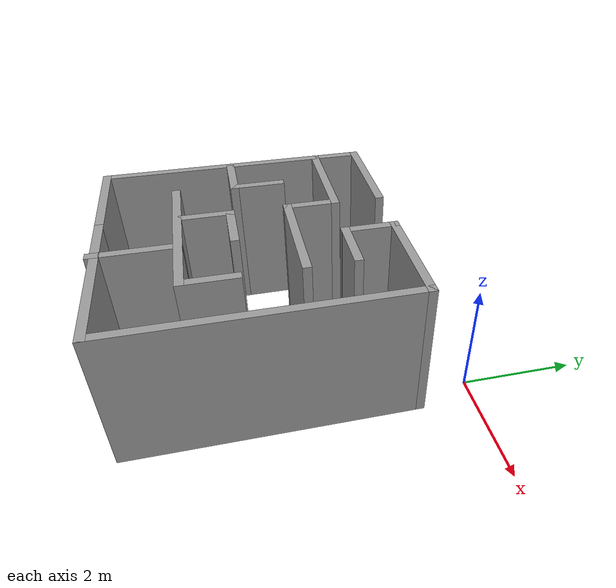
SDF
<?xml version='1.0'?>
<sdf version='1.7'>
  <model name='maze0'>
    <pose>-2.03 -2.97967 0 0 -0 0</pose>
    <link name='Wall_0'>
      <collision name='Wall_0_Collision'>
        <geometry>
          <box>
            <size>2 0.15 2.5</size>
          </box>
        </geometry>
        <pose>0 0 1.25 0 -0 0</pose>
      </collision>
      <visual name='Wall_0_Visual'>
        <pose>0 0 1.25 0 -0 0</pose>
        <geometry>
          <box>
            <size>2 0.15 2.5</size>
          </box>
        </geometry>
        <material>
          <script>
            <uri>file://media/materials/scripts/gazebo.material</uri>
            <name>Gazebo/Grey</name>
          </script>
          <ambient>1 1 1 1</ambient>
        </material>
        <meta>
          <layer>0</layer>
        </meta>
      </visual>
      <pose>-1.425 2.01967 0 0 -0 3.14159</pose>
    </link>
    <link name='Wall_1'>
      <collision name='Wall_1_Collision'>
        <geometry>
          <box>
            <size>5 0.15 2.5</size>
          </box>
        </geometry>
        <pose>0 0 1.25 0 -0 0</pose>
      </collision>
      <visual name='Wall_1_Visual'>
        <pose>0 0 1.25 0 -0 0</pose>
        <geometry>
          <box>
            <size>5 0.15 2.5</size>
          </box>
        </geometry>
        <material>
          <script>
            <uri>file://media/materials/scripts/gazebo.material</uri>
            <name>Gazebo/Grey</name>
          </script>
          <ambient>1 1 1 1</ambient>
        </material>
        <meta>
          <layer>0</layer>
        </meta>
      </visual>
      <pose>-2.35 -0.405328 0 0 -0 -1.5708</pose>
    </link>
    <link name='Wall_11'>
      <collision name='Wall_11_Collision'>
        <geometry>
          <box>
            <size>2 0.15 2.5</size>
          </box>
        </geometry>
        <pose>0 0 1.25 0 -0 0</pose>
      </collision>
      <visual name='Wall_11_Visual'>
        <pose>0 0 1.25 0 -0 0</pose>
        <geometry>
          <box>
            <size>2 0.15 2.5</size>
          </box>
        </geometry>
        <material>
          <script>
            <uri>file://media/materials/scripts/gazebo.material</uri>
            <name>Gazebo/Grey</name>
          </script>
          <ambient>1 1 1 1</ambient>
        </material>
        <meta>
          <layer>0</layer>
        </meta>
      </visual>
      <pose>0.436557 0.352125 0 0 -0 3.14159</pose>
    </link>
    <link name='Wall_12'>
      <collision name='Wall_12_Collision'>
        <geometry>
          <box>
            <size>1 0.15 2.5</size>
          </box>
        </geometry>
        <pose>0 0 1.25 0 -0 0</pose>
      </collision>
      <visual name='Wall_12_Visual'>
        <pose>0 0 1.25 0 -0 0</pose>
        <geometry>
          <box>
            <size>1 0.15 2.5</size>
          </box>
        </geometry>
        <material>
          <script>
            <uri>file://media/materials/scripts/gazebo.material</uri>
            <name>Gazebo/Grey</name>
          </script>
          <ambient>1 1 1 1</ambient>
        </material>
        <meta>
          <layer>0</layer>
        </meta>
      </visual>
      <pose>-0.488443 0.777125 0 0 -0 1.5708</pose>
    </link>
    <link name='Wall_13'>
      <collision name='Wall_13_Collision'>
        <geometry>
          <box>
            <size>2 0.15 2.5</size>
          </box>
        </geometry>
        <pose>0 0 1.25 0 -0 0</pose>
      </collision>
      <visual name='Wall_13_Visual'>
        <pose>0 0 1.25 0 -0 0</pose>
        <geometry>
          <box>
            <size>2 0.15 2.5</size>
          </box>
        </geometry>
        <material>
          <script>
            <uri>file://media/materials/scripts/gazebo.material</uri>
            <name>Gazebo/Grey</name>
          </script>
          <ambient>1 1 1 1</ambient>
        </material>
        <meta>
          <layer>0</layer>
        </meta>
      </visual>
      <pose>-1.41344 1.20213 0 0 -0 3.14159</pose>
    </link>
    <link name='Wall_15'>
      <collision name='Wall_15_Collision'>
        <geometry>
          <box>
            <size>1 0.15 2.5</size>
          </box>
        </geometry>
        <pose>0 0 1.25 0 -0 0</pose>
      </collision>
      <visual name='Wall_15_Visual'>
        <pose>0 0 1.25 0 -0 0</pose>
        <geometry>
          <box>
            <size>1 0.15 2.5</size>
          </box>
        </geometry>
        <material>
          <script>
            <uri>file://media/materials/scripts/gazebo.material</uri>
            <name>Gazebo/Grey</name>
          </script>
          <ambient>1 1 1 1</ambient>
        </material>
        <meta>
          <layer>0</layer>
        </meta>
      </visual>
      <pose>-1.43946 -0.072875 0 0 -0 -1.5708</pose>
    </link>
    <link name='Wall_16'>
      <collision name='Wall_16_Collision'>
        <geometry>
          <box>
            <size>1 0.15 2.5</size>
          </box>
        </geometry>
        <pose>0 0 1.25 0 -0 0</pose>
      </collision>
      <visual name='Wall_16_Visual'>
        <pose>0 0 1.25 0 -0 0</pose>
        <geometry>
          <box>
            <size>1 0.15 2.5</size>
          </box>
        </geometry>
        <material>
          <script>
            <uri>file://media/materials/scripts/gazebo.material</uri>
            <name>Gazebo/Grey</name>
          </script>
          <ambient>1 1 1 1</ambient>
        </material>
        <meta>
          <layer>0</layer>
        </meta>
      </visual>
      <pose>-1.86446 -0.497875 0 0 -0 3.14159</pose>
    </link>
    <link name='Wall_18'>
      <collision name='Wall_18_Collision'>
        <geometry>
          <box>
            <size>3 0.15 2.5</size>
          </box>
        </geometry>
        <pose>0 0 1.25 0 -0 0</pose>
      </collision>
      <visual name='Wall_18_Visual'>
        <pose>0 0 1.25 0 -0 0</pose>
        <geometry>
          <box>
            <size>3 0.15 2.5</size>
          </box>
        </geometry>
        <material>
          <script>
            <uri>file://media/materials/scripts/gazebo.material</uri>
            <name>Gazebo/Grey</name>
          </script>
          <ambient>1 1 1 1</ambient>
        </material>
        <meta>
          <layer>0</layer>
        </meta>
      </visual>
      <pose>-0.027612 -1.55467 0 0 -0 0</pose>
    </link>
    <link name='Wall_19'>
      <collision name='Wall_19_Collision'>
        <geometry>
          <box>
            <size>1 0.15 2.5</size>
          </box>
        </geometry>
        <pose>0 0 1.25 0 -0 0</pose>
      </collision>
      <visual name='Wall_19_Visual'>
        <pose>0 0 1.25 0 -0 0</pose>
        <geometry>
          <box>
            <size>1 0.15 2.5</size>
          </box>
        </geometry>
        <material>
          <script>
            <uri>file://media/materials/scripts/gazebo.material</uri>
            <name>Gazebo/Grey</name>
          </script>
          <ambient>1 1 1 1</ambient>
        </material>
        <meta>
          <layer>0</layer>
        </meta>
      </visual>
      <pose>1.39739 -1.12967 0 0 -0 1.5708</pose>
    </link>
    <link name='Wall_2'>
      <collision name='Wall_2_Collision'>
        <geometry>
          <box>
            <size>2 0.15 2.5</size>
          </box>
        </geometry>
        <pose>0 0 1.25 0 -0 0</pose>
      </collision>
      <visual name='Wall_2_Visual'>
        <pose>0 0 1.25 0 -0 0</pose>
        <geometry>
          <box>
            <size>2 0.15 2.5</size>
          </box>
        </geometry>
        <material>
          <script>
            <uri>file://media/materials/scripts/gazebo.material</uri>
            <name>Gazebo/Grey</name>
          </script>
          <ambient>1 1 1 1</ambient>
        </material>
        <meta>
          <layer>0</layer>
        </meta>
      </visual>
      <pose>-1.425 -2.83033 0 0 -0 0</pose>
    </link>
    <link name='Wall_21'>
      <collision name='Wall_21_Collision'>
        <geometry>
          <box>
            <size>1 0.15 2.5</size>
          </box>
        </geometry>
        <pose>0 0 1.25 0 -0 0</pose>
      </collision>
      <visual name='Wall_21_Visual'>
        <pose>0 0 1.25 0 -0 0</pose>
        <geometry>
          <box>
            <size>1 0.15 2.5</size>
          </box>
        </geometry>
        <material>
          <script>
            <uri>file://media/materials/scripts/gazebo.material</uri>
            <name>Gazebo/Grey</name>
          </script>
          <ambient>1 1 1 1</ambient>
        </material>
        <meta>
          <layer>0</layer>
        </meta>
      </visual>
      <pose>-0.492639 -1.07707 0 0 -0 1.5708</pose>
    </link>
    <link name='Wall_22'>
      <collision name='Wall_22_Collision'>
        <geometry>
          <box>
            <size>1 0.15 2.5</size>
          </box>
        </geometry>
        <pose>0 0 1.25 0 -0 0</pose>
      </collision>
      <visual name='Wall_22_Visual'>
        <pose>0 0 1.25 0 -0 0</pose>
        <geometry>
          <box>
            <size>1 0.15 2.5</size>
          </box>
        </geometry>
        <material>
          <script>
            <uri>file://media/materials/scripts/gazebo.material</uri>
            <name>Gazebo/Grey</name>
          </script>
          <ambient>1 1 1 1</ambient>
        </material>
        <meta>
          <layer>0</layer>
        </meta>
      </visual>
      <pose>-0.067639 -0.652071 0 0 -0 0</pose>
    </link>
    <link name='Wall_24'>
      <collision name='Wall_24_Collision'>
        <geometry>
          <box>
            <size>1.5 0.15 2.5</size>
          </box>
        </geometry>
        <pose>0 0 1.25 0 -0 0</pose>
      </collision>
      <visual name='Wall_24_Visual'>
        <pose>0 0 1.25 0 -0 0</pose>
        <geometry>
          <box>
            <size>1.5 0.15 2.5</size>
          </box>
        </geometry>
        <material>
          <script>
            <uri>file://media/materials/scripts/gazebo.material</uri>
            <name>Gazebo/Grey</name>
          </script>
          <ambient>1 1 1 1</ambient>
        </material>
        <meta>
          <layer>0</layer>
        </meta>
      </visual>
      <pose>0.375283 -2.22967 0 0 -0 -1.5708</pose>
    </link>
    <link name='Wall_5'>
      <collision name='Wall_5_Collision'>
        <geometry>
          <box>
            <size>3 0.15 2.5</size>
          </box>
        </geometry>
        <pose>0 0 1.25 0 -0 0</pose>
      </collision>
      <visual name='Wall_5_Visual'>
        <pose>0 0 1.25 0 -0 0</pose>
        <geometry>
          <box>
            <size>3 0.15 2.5</size>
          </box>
        </geometry>
        <material>
          <script>
            <uri>file://media/materials/scripts/gazebo.material</uri>
            <name>Gazebo/Grey</name>
          </script>
          <ambient>1 1 1 1</ambient>
        </material>
        <meta>
          <layer>0</layer>
        </meta>
      </visual>
      <pose>0.925 -2.83033 0 0 -0 0</pose>
    </link>
    <link name='Wall_6'>
      <collision name='Wall_6_Collision'>
        <geometry>
          <box>
            <size>5 0.15 2.5</size>
          </box>
        </geometry>
        <pose>0 0 1.25 0 -0 0</pose>
      </collision>
      <visual name='Wall_6_Visual'>
        <pose>0 0 1.25 0 -0 0</pose>
        <geometry>
          <box>
            <size>5 0.15 2.5</size>
          </box>
        </geometry>
        <material>
          <script>
            <uri>file://media/materials/scripts/gazebo.material</uri>
            <name>Gazebo/Grey</name>
          </script>
          <ambient>1 1 1 1</ambient>
        </material>
        <meta>
          <layer>0</layer>
        </meta>
      </visual>
      <pose>2.35 -0.405328 0 0 -0 1.5708</pose>
    </link>
    <link name='Wall_7'>
      <collision name='Wall_7_Collision'>
        <geometry>
          <box>
            <size>2 0.15 2.5</size>
          </box>
        </geometry>
        <pose>0 0 1.25 0 -0 0</pose>
      </collision>
      <visual name='Wall_7_Visual'>
        <pose>0 0 1.25 0 -0 0</pose>
        <geometry>
          <box>
            <size>2 0.15 2.5</size>
          </box>
        </geometry>
        <material>
          <script>
            <uri>file://media/materials/scripts/gazebo.material</uri>
            <name>Gazebo/Grey</name>
          </script>
          <ambient>1 1 1 1</ambient>
        </material>
        <meta>
          <layer>0</layer>
        </meta>
      </visual>
      <pose>1.425 2.01967 0 0 -0 3.14159</pose>
    </link>
    <link name='Wall_8'>
      <collision name='Wall_8_Collision'>
        <geometry>
          <box>
            <size>1 0.15 2.5</size>
          </box>
        </geometry>
        <pose>0 0 1.25 0 -0 0</pose>
      </collision>
      <visual name='Wall_8_Visual'>
        <pose>0 0 1.25 0 -0 0</pose>
        <geometry>
          <box>
            <size>1 0.15 2.5</size>
          </box>
        </geometry>
        <material>
          <script>
            <uri>file://media/materials/scripts/gazebo.material</uri>
            <name>Gazebo/Grey</name>
          </script>
          <ambient>1 1 1 1</ambient>
        </material>
        <meta>
          <layer>0</layer>
        </meta>
      </visual>
      <pose>0.5 1.59467 0 0 -0 -1.5708</pose>
    </link>
    <link name='Wall_9'>
      <collision name='Wall_9_Collision'>
        <geometry>
          <box>
            <size>1 0.15 2.5</size>
          </box>
        </geometry>
        <pose>0 0 1.25 0 -0 0</pose>
      </collision>
      <visual name='Wall_9_Visual'>
        <pose>0 0 1.25 0 -0 0</pose>
        <geometry>
          <box>
            <size>1 0.15 2.5</size>
          </box>
        </geometry>
        <material>
          <script>
            <uri>file://media/materials/scripts/gazebo.material</uri>
            <name>Gazebo/Grey</name>
          </script>
          <ambient>1 1 1 1</ambient>
        </material>
        <meta>
          <layer>0</layer>
        </meta>
      </visual>
      <pose>0.925 1.16967 0 0 -0 0</pose>
    </link>
    <static>1</static>
  </model>
</sdf>
